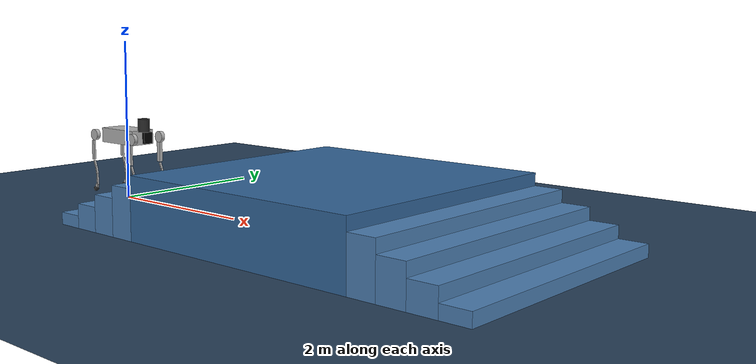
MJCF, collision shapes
<mujoco model="scene_b2ygx_stairs_14cm">
  <include file="b2ygx.xml" />

  <!-- setup scene -->
  <statistic center="3.0 0.0 0.5" extent="4.0"/>
  <visual>
    <headlight diffuse="0.6 0.6 0.6" ambient="0.1 0.1 0.1" specular="0.9 0.9 0.9"/>
    <rgba haze="0.15 0.25 0.35 1"/>
    <global azimuth="-140" elevation="-20"/>
  </visual>
  <asset>
    <texture type="skybox" builtin="flat" rgb1="0 0 0" rgb2="0 0 0" width="512" height="3072"/>
    <texture type="2d" name="groundplane" builtin="checker" mark="edge" rgb1="0.2 0.3 0.4" rgb2="0.1 0.2 0.3" markrgb="0.8 0.8 0.8" width="300" height="300"/>
    <material name="groundplane" texture="groundplane" texuniform="true" texrepeat="5 5" reflectance="0.2"/>
  </asset>
  <worldbody>
    <light pos="3 0 5" dir="0 0 -1" directional="true"/>
    <geom name="floor" size="0 0 0.05" type="plane" material="groundplane"/>

    <!-- Ascending 14cm stairs (Step Width: 0.32m, Height: 0.14m) -->
    <!-- Flat region at start: x = [0.0, 0.8] -->
    <geom name="step1" type="box" size="0.16 1.5 0.07" pos="0.96 0 0.07" rgba="0.3 0.5 0.7 1"/>
    <geom name="step2" type="box" size="0.16 1.5 0.14" pos="1.28 0 0.14" rgba="0.3 0.5 0.7 1"/>
    <geom name="step3" type="box" size="0.16 1.5 0.21" pos="1.60 0 0.21" rgba="0.3 0.5 0.7 1"/>
    <geom name="step4" type="box" size="0.16 1.5 0.28" pos="1.92 0 0.28" rgba="0.3 0.5 0.7 1"/>

    <!-- Peak platform (3.0m wide, 0.70m high) -->
    <geom name="platform" type="box" size="1.5 1.5 0.35" pos="3.58 0 0.35" rgba="0.2 0.4 0.6 1"/>

    <!-- Descending 14cm stairs (Step Width: 0.32m, Height: 0.14m) -->
    <geom name="step_down1" type="box" size="0.16 1.5 0.28" pos="5.24 0 0.28" rgba="0.3 0.5 0.7 1"/>
    <geom name="step_down2" type="box" size="0.16 1.5 0.21" pos="5.56 0 0.21" rgba="0.3 0.5 0.7 1"/>
    <geom name="step_down3" type="box" size="0.16 1.5 0.14" pos="5.88 0 0.14" rgba="0.3 0.5 0.7 1"/>
    <geom name="step_down4" type="box" size="0.16 1.5 0.07" pos="6.20 0 0.07" rgba="0.3 0.5 0.7 1"/>

  </worldbody>
</mujoco>

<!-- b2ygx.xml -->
<mujoco model="b2">
  <compiler angle="radian" meshdir="assets" autolimits="true"/>

  <default>
    <default class="b2">
      <geom type="mesh"/>
      <joint damping="1" armature="0.1"/>
      <default class="visual">
        <geom contype="0" conaffinity="0" group="2"/>
      </default>
      <default class="collision">
        <geom group="3" mass="0" density="0"/>
      </default>
      <site size="0.001" rgba="0.5 0.5 0.5 0.3" group="4"/>
    </default>
  </default>

  <asset>
    <mesh name="base_link" file="base_link.obj"/>
    <mesh name="logo_left" file="logo_left.obj"/>
    <mesh name="logo_right" file="logo_right.obj"/>
    <mesh name="unitree_ladar" file="unitree_ladar.obj"/>
    <mesh name="f_dc_link" file="f_dc_link.obj"/>
    <mesh name="r_dc_link" file="r_dc_link.obj"/>
    <mesh name="fake_imu_link" file="fake_imu_link.STL"/>
    <mesh name="fake_head_Link" file="fake_head_Link.STL"/>
    <mesh name="fake_tail_link" file="fake_tail_link.STL"/>
    <mesh name="FL_hip" file="FL_hip.obj"/>
    <mesh name="FL_thigh" file="FL_thigh.obj"/>
    <mesh name="FL_thigh_protect" file="FL_thigh_protect.obj"/>
    <mesh name="FL_calf" file="FL_calf.obj"/>
    <mesh name="FL_foot" file="FL_foot.obj"/>
    <mesh name="FR_hip" file="FR_hip.obj"/>
    <mesh name="FR_thigh" file="FR_thigh.obj"/>
    <mesh name="FR_thigh_protect" file="FR_thigh_protect.obj"/>
    <mesh name="FR_calf" file="FR_calf.obj"/>
    <mesh name="FR_foot" file="FR_foot.obj"/>
    <mesh name="RL_hip" file="RL_hip.obj"/>
    <mesh name="RL_thigh" file="RL_thigh.obj"/>
    <mesh name="RL_thigh_protect" file="RL_thigh_protect.obj"/>
    <mesh name="RL_calf" file="RL_calf.obj"/>
    <mesh name="RL_foot" file="RL_foot.obj"/>
    <mesh name="RR_hip" file="RR_hip.obj"/>
    <mesh name="RR_thigh" file="RR_thigh.obj"/>
    <mesh name="RR_thigh_protect" file="RR_thigh_protect.obj"/>
    <mesh name="RR_calf" file="RR_calf.obj"/>
    <mesh name="RR_foot" file="RR_foot.obj"/>
    <mesh name="f_oc_link" file="f_oc_link.obj"/>
    <mesh name="r_oc_link" file="r_oc_link.obj"/>
  </asset>
  <worldbody>
    <body name="base_link" pos="0 0 0.8" childclass="b2">
      <inertial pos="0 0 0" quat="1 0 0 0" mass="35" diaginertia="0.404929 1.256396 1.463868"/>
      <joint name="floating_base_joint" type="free"/>
      <geom type="mesh" contype="0" conaffinity="0" group="1" density="0" rgba="0.7 0.7 0.7 1" mesh="base_link"/>
      <geom name="base1_collision" size="0.315 0.162 0.092" type="box" rgba="0.7 0.7 0.7 1" class="collision"/>
      <geom type="mesh" contype="0" conaffinity="0" group="1" density="0" rgba="1 1 1 1" mesh="logo_left"/>
      <geom type="mesh" contype="0" conaffinity="0" group="1" density="0" rgba="1 1 1 1" mesh="logo_right"/>
      <geom pos="0.34218 0 0.17851" type="mesh" contype="0" conaffinity="0" group="1" density="0" rgba="0.15 0.15 0.15 1" mesh="unitree_ladar"/>
      <geom name="base2_collision" size="0.076 0.08" pos="0.34218 0 0.15851" type="cylinder" rgba="0.15 0.15 0.15 1" class="collision"/>
      <geom pos="0.841724 -4.57659e-06 0.130379" quat="0.00244632 3.13845e-06 0.999997 1.29099e-06" type="mesh" contype="0" conaffinity="0" group="1" density="0" rgba="0 0 0 1" mesh="f_dc_link"/>
      <geom pos="-0.378319 0.000200109 -0.379902" quat="-1.30076e-06 -0.708662 5.35065e-07 0.705548" type="mesh" contype="0" conaffinity="0" group="1" density="0" rgba="0 0 0 1" mesh="r_dc_link"/>
      <geom pos="0 -0.02341 0.04927" type="mesh" contype="0" conaffinity="0" group="1" density="0" rgba="0 0 0 1" mesh="fake_imu_link"/>
      <geom type="mesh" contype="0" conaffinity="0" group="1" density="0" rgba="0 0 0 1" mesh="fake_head_Link"/>
      <geom name="base3_collision" size="0.02 0.06 0.07" pos="0.41 0 0.005" type="box" rgba="0 0 0 1" class="collision"/>
      <geom type="mesh" contype="0" conaffinity="0" group="1" density="0" rgba="0 0 0 1" mesh="fake_tail_link"/>
      <geom name="base4_collision" size="0.0125 0.06 0.07" pos="-0.405 0 0.005" type="box" rgba="0 0 0 1" class="collision"/>
      <geom pos="0.84158 -0.0134347 -0.0134347" quat="-3.89602e-06 1.29867e-06 0.707107 -0.707107" type="mesh" contype="0" conaffinity="0" group="1" density="0" rgba="0 0 0 1" mesh="f_oc_link"/>
      <geom pos="-0.00451008 0.0252504 -0.0262476" quat="0.707107 -0.707107 -1.29867e-06 -1.29867e-06" type="mesh" contype="0" conaffinity="0" group="1" density="0" rgba="0 0 0 1" mesh="r_oc_link"/>
      <site name="imu" pos="0 -0.02341 0.04927"/>
      <body name="FL_hip" pos="0.3945 0.09 0">
        <inertial pos="-0.00829923 -0.00998502 0.000235465" quat="0.525168 0.518964 0.477213 0.476595" mass="2.2" diaginertia="0.00422310 0.00322353 0.00241085"/>
        <joint name="FL_hip_joint" pos="0 0 0" axis="1 0 0" range="-0.70 0.70"/>
        <geom type="mesh" contype="0" conaffinity="0" group="1" density="0" rgba="0.7 0.7 0.7 1" mesh="FL_hip"/>
        <geom name="FL_hip_collision" size="0.07 0.025" pos="0 0.12 0" quat="0.707107 0.707107 0 0" type="cylinder" rgba="0.7 0.7 0.7 1" class="collision"/>
        <body name="FL_thigh" pos="0 0.13225 0">
          <inertial pos="-0.00418663 -0.0366068 -0.0437683" quat="0.885535 0.0869465 -0.0087619 0.456279" mass="7.9" diaginertia="0.0919981 0.0911773 0.0119292"/>
          <joint name="FL_thigh_joint" pos="0 0 0" axis="0 1 0" range="-0.94 1.69"/>
          <geom type="mesh" contype="0" conaffinity="0" group="1" density="0" rgba="0.7 0.7 0.7 1" mesh="FL_thigh"/>
          <geom name="FL_thigh_collision" size="0.16 0.02225 0.027" pos="-0.025 0 -0.16" quat="0.707388 0 0.706825 0" type="box" rgba="0.7 0.7 0.7 1" class="collision"/>
          <geom type="mesh" contype="0" conaffinity="0" group="1" density="0" rgba="0.65 0.68 0.65 1" mesh="FL_thigh_protect"/>
          <body name="FL_calf" pos="0 -8.6984e-05 -0.354">
            <inertial pos="0.0096848 1.25758e-05 -0.158987" quat="0.70753 -0.00625821 -0.00634277 0.706627" mass="0.679123" diaginertia="0.0162494 0.0161173 0.000398115"/>
            <joint name="FL_calf_joint" pos="0 0 0" axis="0 1 0" range="-2.62 -0.43"/>
            <geom type="mesh" contype="0" conaffinity="0" group="1" density="0" rgba="0.7 0.7 0.7 1" mesh="FL_calf"/>
            <geom size="0.05 0.01225 0.009" pos="-0.002 0 -0.03" quat="0.825336 0 0.564642 0" type="box" rgba="0.7 0.7 0.7 1" name="FL_calf1_collision" class="collision"/>
            <geom size="0.05 0.01225 0.009" pos="0.022 0 -0.1" quat="0.780707 0 0.624897 0" type="box" rgba="0.7 0.7 0.7 1" name="FL_calf2_collision" class="collision"/>
            <geom size="0.075 0.01225 0.0075" pos="0.036 0 -0.225" quat="0.721382 0 0.692537 0" type="box" rgba="0.7 0.7 0.7 1" name="FL_calf3_collision" class="collision"/>
            <geom size="0.025 0.014 0.0175" pos="0.023 0 -0.31" quat="0.540302 0 0.841471 0" type="box" rgba="0.7 0.7 0.7 1" name="FL_calf4_collision" class="collision"/>
            <geom pos="0 8.6986e-05 0" type="mesh" contype="0" conaffinity="0" group="1" density="0" rgba="0.15 0.15 0.15 1" mesh="FL_foot" friction="0.4 0.005 0.0001"/>
            <geom name="FL_foot_collision" size="0.032" pos="0 8.6986e-05 -0.35" quat="0.707388 0.706825 0 0" type="sphere" rgba="0.15 0.15 0.15 1" class="collision" friction="0.4 0.005 0.0001"/>
            <site name="FL" pos="0 8.6986e-05 -0.35" type="sphere" size="0.032"/>
          </body>
        </body>
      </body>
      <body name="FR_hip" pos="0.3945 -0.09 0">
        <inertial pos="-0.00829923 0.00998502 0.000235465" quat="0.476595 0.477213 0.518964 0.525168" mass="2.2" diaginertia="0.00422310 0.00322353 0.00241085"/>
        <joint name="FR_hip_joint" pos="0 0 0" axis="1 0 0" range="-0.70 0.70"/>
        <geom type="mesh" contype="0" conaffinity="0" group="1" density="0" rgba="0.7 0.7 0.7 1" mesh="FR_hip"/>
        <geom name="FR_hip_collision" size="0.07 0.025" pos="0 -0.12 0" quat="0.707107 0.707107 0 0" type="cylinder" rgba="0.7 0.7 0.7 1" class="collision"/>
        <body name="FR_thigh" pos="0 -0.13225 0">
          <inertial pos="-0.00418663 0.0366068 -0.0437683" quat="0.456279 -0.0087619 0.0869465 0.885535" mass="7.9" diaginertia="0.0919981 0.0911773 0.0119292"/>
          <joint name="FR_thigh_joint" pos="0 0 0" axis="0 1 0" range="-0.94 1.69"/>
          <geom type="mesh" contype="0" conaffinity="0" group="1" density="0" rgba="0.7 0.7 0.7 1" mesh="FR_thigh"/>
          <geom name="FR_thigh_collision" size="0.125 0.014 0.02" pos="-0.03 0 -0.2" quat="0.707388 0 0.706825 0" type="box" rgba="0.7 0.7 0.7 1" class="collision"/>
          <geom type="mesh" contype="0" conaffinity="0" group="1" density="0" rgba="0.65 0.68 0.65 1" mesh="FR_thigh_protect"/>
          <body name="FR_calf" pos="0 8.6986e-05 -0.354">
            <inertial pos="0.0096848 0 -0.158987" quat="0.707079 -0.00630052 -0.00630052 0.707079" mass="0.679123" diaginertia="0.0162494 0.0161173 0.000398115"/>
            <joint name="FR_calf_joint" pos="0 0 0" axis="0 1 0" range="-2.62 -0.43"/>
            <geom type="mesh" contype="0" conaffinity="0" group="1" density="0" rgba="0.7 0.7 0.7 1" mesh="FR_calf"/>
            <geom size="0.05 0.01225 0.009" pos="-0.002 0 -0.03" quat="0.825336 0 0.564642 0" type="box" rgba="0.7 0.7 0.7 1" name="FR_calf1_collision" class="collision"/>
            <geom size="0.05 0.01225 0.009" pos="0.022 0 -0.1" quat="0.780707 0 0.624897 0" type="box" rgba="0.7 0.7 0.7 1" name="FR_calf2_collision" class="collision"/>
            <geom size="0.075 0.01225 0.0075" pos="0.036 0 -0.225" quat="0.721382 0 0.692537 0" type="box" rgba="0.7 0.7 0.7 1" name="FR_calf3_collision" class="collision"/>
            <geom size="0.025 0.014 0.0175" pos="0.023 0 -0.31" quat="0.540302 0 0.841471 0" type="box" rgba="0.7 0.7 0.7 1" name="FR_calf4_collision" class="collision"/>
            <geom type="mesh" contype="0" conaffinity="0" group="1" density="0" rgba="0.15 0.15 0.15 1" mesh="FR_foot" friction="0.4 0.005 0.0001"/>
            <geom name="FR_foot_collision" size="0.032" pos="0 8.6986e-05 -0.35" quat="0.707388 0.706825 0 0" type="sphere" rgba="0.15 0.15 0.15 1" class="collision" friction="0.4 0.005 0.0001"/>
            <site name="FR" pos="0 8.6986e-05 -0.35" type="sphere" size="0.032"/>
          </body>
        </body>
      </body>
      <body name="RL_hip" pos="-0.3945 0.09 0">
        <inertial pos="0.00829923 -0.00998502 0.000235465" quat="0.477213 0.476595 0.525168 0.518964" mass="2.2" diaginertia="0.00422310 0.00322353 0.00241085"/>
        <joint name="RL_hip_joint" pos="0 0 0" axis="1 0 0" range="-0.70 0.70"/>
        <geom type="mesh" contype="0" conaffinity="0" group="1" density="0" rgba="0.7 0.7 0.7 1" mesh="RL_hip"/>
        <geom name="RL_hip_collision" size="0.07 0.025" pos="0 0.12 0" quat="0.707107 0.707107 0 0" type="cylinder" rgba="0.7 0.7 0.7 1" class="collision"/>
        <body name="RL_thigh" pos="0 0.13225 0">
          <inertial pos="-0.00418663 -0.0366068 -0.0437683" quat="0.885535 0.0869465 -0.0087619 0.456279" mass="7.9" diaginertia="0.0919981 0.0911773 0.0119292"/>
          <joint name="RL_thigh_joint" pos="0 0 0" axis="0 1 0" range="-0.94 1.69"/>
          <geom type="mesh" contype="0" conaffinity="0" group="1" density="0" rgba="0.7 0.7 0.7 1" mesh="RL_thigh"/>
          <geom name="RL_thigh_collision" size="0.125 0.014 0.02" pos="-0.03 0 -0.2" quat="0.707388 0 0.706825 0" type="box" rgba="0.7 0.7 0.7 1" class="collision"/>
          <geom type="mesh" contype="0" conaffinity="0" group="1" density="0" rgba="0.65 0.68 0.65 1" mesh="RL_thigh_protect"/>
          <body name="RL_calf" pos="0 -8.6984e-05 -0.354">
            <inertial pos="0.0096848 1.25758e-05 -0.158987" quat="0.70753 -0.00625821 -0.00634277 0.706627" mass="0.679123" diaginertia="0.0162494 0.0161173 0.000398115"/>
            <joint name="RL_calf_joint" pos="0 0 0" axis="0 1 0" range="-2.62 -0.43"/>
            <geom type="mesh" contype="0" conaffinity="0" group="1" density="0" rgba="0.7 0.7 0.7 1" mesh="RL_calf"/>
            <geom size="0.05 0.01225 0.009" pos="-0.002 0 -0.03" quat="0.825336 0 0.564642 0" type="box" rgba="0.7 0.7 0.7 1" name="RL_calf1_collision" class="collision"/>
            <geom size="0.05 0.01225 0.009" pos="0.022 0 -0.1" quat="0.780707 0 0.624897 0" type="box" rgba="0.7 0.7 0.7 1" name="RL_calf2_collision" class="collision"/>
            <geom size="0.075 0.01225 0.0075" pos="0.036 0 -0.225" quat="0.721382 0 0.692537 0" type="box" rgba="0.7 0.7 0.7 1" name="RL_calf3_collision" class="collision"/>
            <geom size="0.025 0.014 0.0175" pos="0.023 0 -0.31" quat="0.540302 0 0.841471 0" type="box" rgba="0.7 0.7 0.7 1" name="RL_calf4_collision" class="collision"/>
            <geom pos="0 8.6986e-05 0" type="mesh" contype="0" conaffinity="0" group="1" density="0" rgba="0.15 0.15 0.15 1" mesh="RL_foot" friction="0.4 0.005 0.0001"/>
            <geom name="RL_foot_collision" size="0.032" pos="0 8.6986e-05 -0.35" quat="0.707388 0.706825 0 0" type="sphere" rgba="0.15 0.15 0.15 1" class="collision" friction="0.4 0.005 0.0001"/>
            <site name="RL" pos="0 8.6986e-05 -0.35" type="sphere" size="0.032"/>
          </body>
        </body>
      </body>
      <body name="RR_hip" pos="-0.3945 -0.09 0">
        <inertial pos="0.00829923 -0.00825992 0.000235465" quat="0.524846 0.53164 0.469132 0.470967" mass="2.2" diaginertia="0.00423213 0.00329274 0.00247108"/>
        <joint name="RR_hip_joint" pos="0 0 0" axis="1 0 0" range="-0.70 0.70"/>
        <geom type="mesh" contype="0" conaffinity="0" group="1" density="0" rgba="0.7 0.7 0.7 1" mesh="RR_hip"/>
        <geom name="RR_hip_collision" size="0.07 0.025" pos="0 -0.12 0" quat="0.707107 0.707107 0 0" type="cylinder" rgba="0.7 0.7 0.7 1" class="collision"/>
        <body name="RR_thigh" pos="0 -0.13225 0">
          <inertial pos="-0.00418663 0.0366068 -0.0437683" quat="0.456279 -0.0087619 0.0869465 0.885535" mass="7.9" diaginertia="0.0919981 0.0911773 0.0119292"/>
          <joint name="RR_thigh_joint" pos="0 0 0" axis="0 1 0" range="-0.94 1.69"/>
          <geom type="mesh" contype="0" conaffinity="0" group="1" density="0" rgba="0.7 0.7 0.7 1" mesh="RR_thigh"/>
          <geom name="RR_thigh_collision" size="0.125 0.014 0.02" pos="-0.03 0 -0.2" quat="0.707388 0 0.706825 0" type="box" rgba="0.7 0.7 0.7 1" class="collision"/>
          <geom type="mesh" contype="0" conaffinity="0" group="1" density="0" rgba="0.65 0.68 0.65 1" mesh="RR_thigh_protect"/>
          <body name="RR_calf" pos="0 8.6986e-05 -0.354">
            <inertial pos="0.0096848 -1.25756e-05 -0.158987" quat="0.706627 -0.00634277 -0.00625821 0.70753" mass="0.679123" diaginertia="0.0162494 0.0161173 0.000398115"/>
            <joint name="RR_calf_joint" pos="0 0 0" axis="0 1 0" range="-2.62 -0.43"/>
            <geom type="mesh" contype="0" conaffinity="0" group="1" density="0" rgba="0.7 0.7 0.7 1" mesh="RR_calf"/>
            <geom size="0.05 0.01225 0.009" pos="-0.002 0 -0.03" quat="0.825336 0 0.564642 0" type="box" rgba="0.7 0.7 0.7 1" name="RR_calf1_collision" class="collision"/>
            <geom size="0.05 0.01225 0.009" pos="0.022 0 -0.1" quat="0.780707 0 0.624897 0" type="box" rgba="0.7 0.7 0.7 1" name="RR_calf2_collision" class="collision"/>
            <geom size="0.075 0.01225 0.0075" pos="0.036 0 -0.225" quat="0.721382 0 0.692537 0" type="box" rgba="0.7 0.7 0.7 1" name="RR_calf3_collision" class="collision"/>
            <geom size="0.025 0.014 0.0175" pos="0.023 0 -0.31" quat="0.540302 0 0.841471 0" type="box" rgba="0.7 0.7 0.7 1" name="RR_calf4_collision" class="collision"/>
            <geom pos="0 -8.6984e-05 0" type="mesh" contype="0" conaffinity="0" group="1" density="0" rgba="0.15 0.15 0.15 1" mesh="RR_foot" friction="0.4 0.005 0.0001"/>
            <geom name="RR_foot_collision" size="0.032" pos="0 8.6986e-05 -0.35" quat="0.707388 0.706825 0 0" type="sphere" rgba="0.15 0.15 0.15 1" class="collision" friction="0.4 0.005 0.0001"/>
            <site name="RR" pos="0 8.6986e-05 -0.35" type="sphere" size="0.032"/>
          </body>
        </body>
      </body>
    </body>
  </worldbody>

  <actuator>
    <motor class="b2" ctrlrange="-200 200"  name="FR_hip" joint="FR_hip_joint"/>
    <motor class="b2" ctrlrange="-200 200"  name="FR_thigh" joint="FR_thigh_joint"/>
    <motor class="b2" ctrlrange="-300 300"  name="FR_calf" joint="FR_calf_joint"/>
    <motor class="b2" ctrlrange="-200 200"  name="FL_hip" joint="FL_hip_joint"/>
    <motor class="b2" ctrlrange="-200 200"  name="FL_thigh" joint="FL_thigh_joint"/>
    <motor class="b2" ctrlrange="-300 300" name="FL_calf" joint="FL_calf_joint"/>
    <motor class="b2" ctrlrange="-200 200"  name="RR_hip" joint="RR_hip_joint"/>
    <motor class="b2" ctrlrange="-200 200"  name="RR_thigh" joint="RR_thigh_joint"/>
    <motor class="b2" ctrlrange="-300 300" name="RR_calf" joint="RR_calf_joint"/>
    <motor class="b2" ctrlrange="-200 200"  name="RL_hip" joint="RL_hip_joint"/>
    <motor class="b2" ctrlrange="-200 200"  name="RL_thigh" joint="RL_thigh_joint"/>
    <motor class="b2" ctrlrange="-300 300" name="RL_calf" joint="RL_calf_joint"/>
  </actuator>

  <sensor>
    <jointpos name="FR_hip_pos" joint="FR_hip_joint" />
    <jointpos name="FR_thigh_pos" joint="FR_thigh_joint" />
    <jointpos name="FR_calf_pos" joint="FR_calf_joint" />
    <jointpos name="FL_hip_pos" joint="FL_hip_joint" />
    <jointpos name="FL_thigh_pos" joint="FL_thigh_joint" />
    <jointpos name="FL_calf_pos" joint="FL_calf_joint" />
    <jointpos name="RR_hip_pos" joint="RR_hip_joint" />
    <jointpos name="RR_thigh_pos" joint="RR_thigh_joint" />
    <jointpos name="RR_calf_pos" joint="RR_calf_joint" />
    <jointpos name="RL_hip_pos" joint="RL_hip_joint" />
    <jointpos name="RL_thigh_pos" joint="RL_thigh_joint" />
    <jointpos name="RL_calf_pos" joint="RL_calf_joint" />

    <jointvel name="FR_hip_vel" joint="FR_hip_joint" />
    <jointvel name="FR_thigh_vel" joint="FR_thigh_joint" />
    <jointvel name="FR_calf_vel" joint="FR_calf_joint" />
    <jointvel name="FL_hip_vel" joint="FL_hip_joint" />
    <jointvel name="FL_thigh_vel" joint="FL_thigh_joint" />
    <jointvel name="FL_calf_vel" joint="FL_calf_joint" />
    <jointvel name="RR_hip_vel" joint="RR_hip_joint" />
    <jointvel name="RR_thigh_vel" joint="RR_thigh_joint" />
    <jointvel name="RR_calf_vel" joint="RR_calf_joint" />
    <jointvel name="RL_hip_vel" joint="RL_hip_joint" />
    <jointvel name="RL_thigh_vel" joint="RL_thigh_joint" />
    <jointvel name="RL_calf_vel" joint="RL_calf_joint" />

    <jointactuatorfrc name="FR_hip_torque" joint="FR_hip_joint" noise="0.01" />
    <jointactuatorfrc name="FR_thigh_torque" joint="FR_thigh_joint" noise="0.01" />
    <jointactuatorfrc name="FR_calf_torque" joint="FR_calf_joint" noise="0.01" />
    <jointactuatorfrc name="FL_hip_torque" joint="FL_hip_joint" noise="0.01" />
    <jointactuatorfrc name="FL_thigh_torque" joint="FL_thigh_joint" noise="0.01" />
    <jointactuatorfrc name="FL_calf_torque" joint="FL_calf_joint" noise="0.01" />
    <jointactuatorfrc name="RR_hip_torque" joint="RR_hip_joint" noise="0.01" />
    <jointactuatorfrc name="RR_thigh_torque" joint="RR_thigh_joint" noise="0.01" />
    <jointactuatorfrc name="RR_calf_torque" joint="RR_calf_joint" noise="0.01" />
    <jointactuatorfrc name="RL_hip_torque" joint="RL_hip_joint" noise="0.01" />
    <jointactuatorfrc name="RL_thigh_torque" joint="RL_thigh_joint" noise="0.01" />
    <jointactuatorfrc name="RL_calf_torque" joint="RL_calf_joint" noise="0.01" />

    <framequat name="imu_quat" objtype="site" objname="imu" />
    <gyro name="imu_ang_vel" site="imu" />
    <velocimeter name="imu_lin_vel" site="imu" />
    <accelerometer name="imu_lin_acc" site="imu" />
    <gyro name="imu_gyro" site="imu" />
    <accelerometer name="imu_acc" site="imu" />
    <subtreeangmom name="root_angmom" body="base_link" />

    <framepos name="frame_pos" objtype="site" objname="imu" />
    <framelinvel name="frame_vel" objtype="site" objname="imu" />
  </sensor>

  <keyframe>
    <key name="home" qpos="0 0 0.546 1 0 0 0 0 0.8 -1.5 0 0.8 -1.5 0 0.8 -1.5 0 0.8 -1.5"
      ctrl="0 0.8 -1.5 0 0.8 -1.5 0 0.8 -1.5 0 0.8 -1.5"/>
  </keyframe>

</mujoco>
